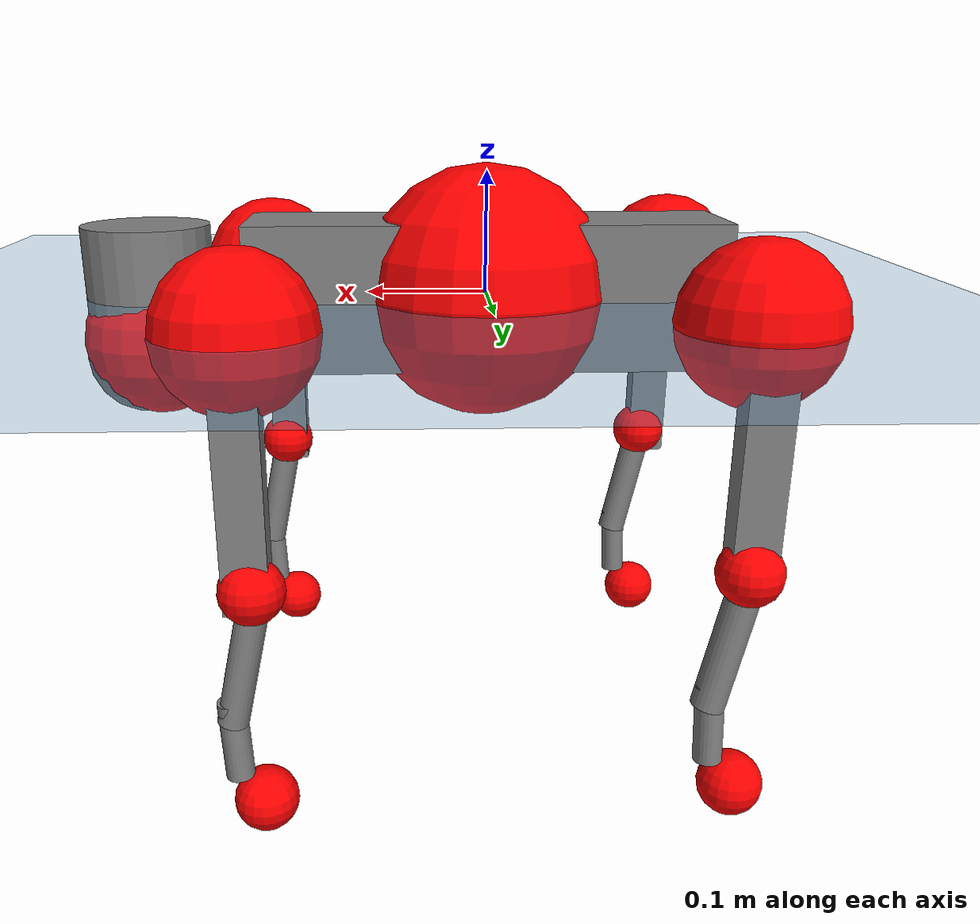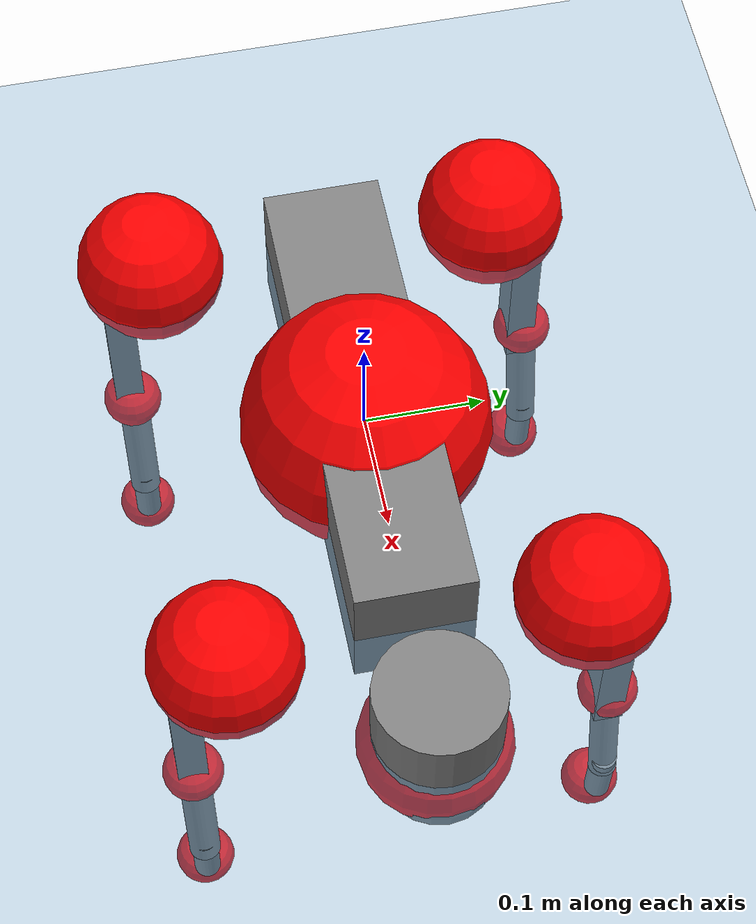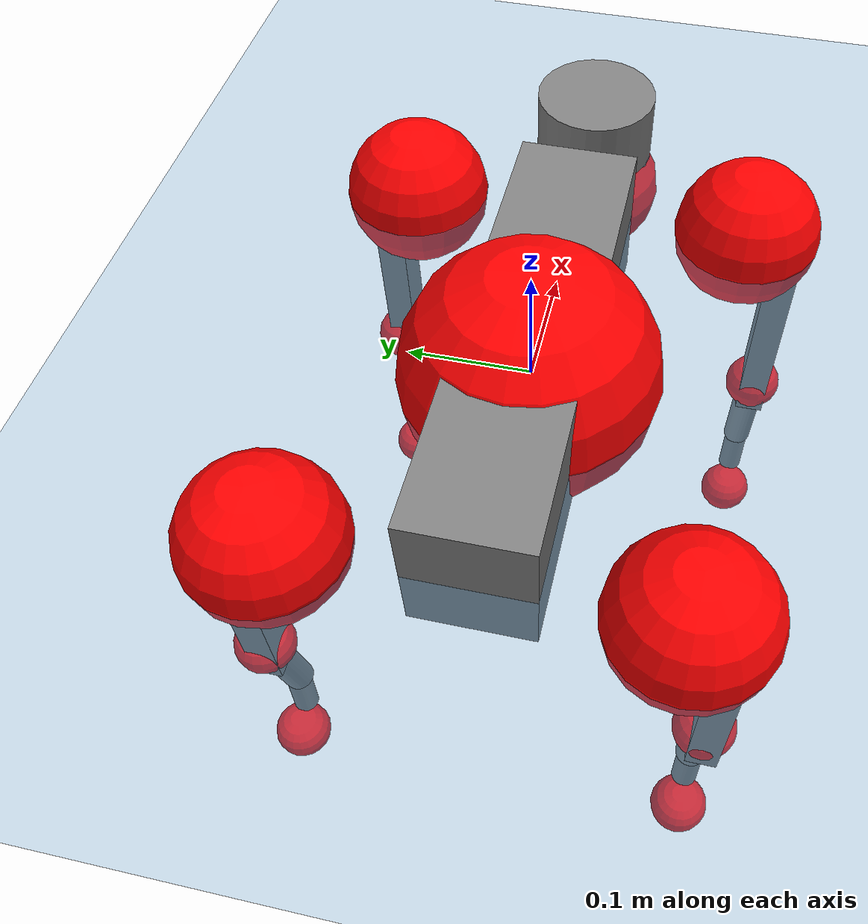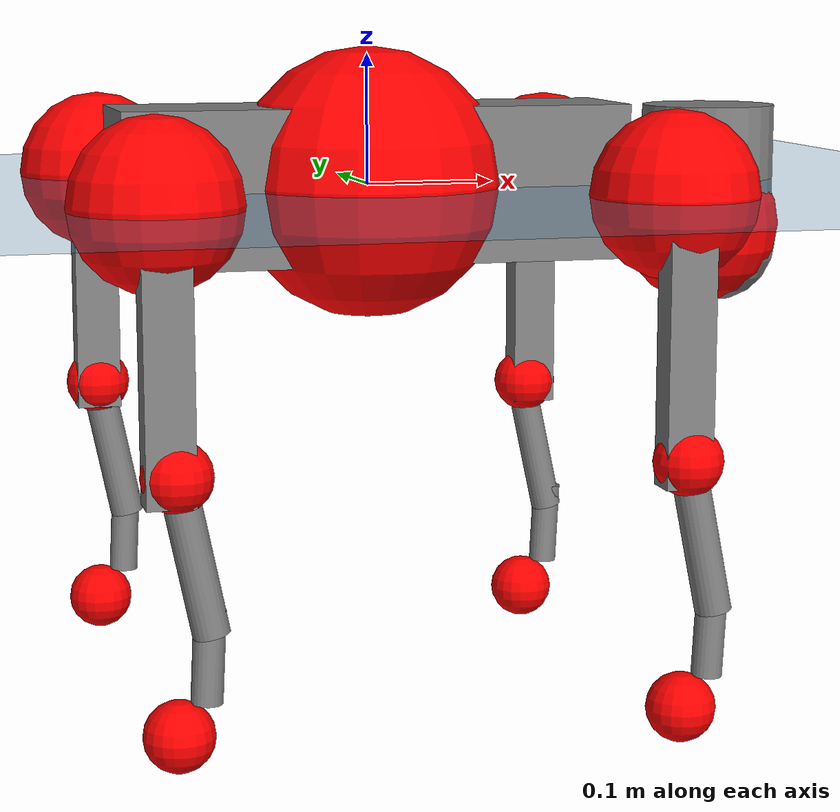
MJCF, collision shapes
<mujoco model="go2">
  <compiler angle="radian" assetdir="assets" balanceinertia="true" inertiafromgeom="false"/>

  <option timestep="0.005" density="1.2" viscosity="2e-05"/>

  <size nkey="1"/>

  <visual>
    <quality shadowsize="8192"/>
    <map shadowclip="0.5"/>
  </visual>

  <default>
    <default class="/">
      <geom contype="0" conaffinity="0" group="1" solref="-1000 -80"/>
      <site size="0.01 0.005 0.005" group="5"/>
      <general forcelimited="true" biastype="affine" gainprm="20" biasprm="0 -20 -0.5"/>
      <default class="go2">
        <joint armature="0.01" damping="0.01" frictionloss="0.2"/>
        <geom condim="1" margin="0.001"/>
        <default class="visual">
          <geom type="mesh" group="2"/>
        </default>
        <default class="collision">
          <geom group="3"/>
          <default class="foot">
            <geom size="0.022 0 0" condim="6" priority="1" friction="0.8 0.02 0.01" solimp="0.015 1 0.022"/>
          </default>
        </default>
        <default class="reward_collision_sphere">
          <geom group="5" rgba="1 0 0 1"/>
        </default>
      </default>
    </default>
  </default>

  <asset>
    <texture type="skybox" colorspace="auto" name="//unnamed_texture_0" builtin="gradient" rgb1="0.95 0.95 0.95" rgb2="0.95 0.95 0.95" width="100" height="600"/>
    <texture type="2d" colorspace="auto" name="texplane" builtin="checker" rgb1="0.345 0.575 0.748" rgb2="0.345 0.575 0.748" markrgb="1 1 1" width="512" height="512"/>
    <material name="MatPlane" class="/" texture="texplane" texuniform="true" texrepeat="2 2" specular="0.9"/>
    <material name="metal" class="/" rgba="0.9 0.95 0.95 1"/>
    <material name="black" class="/" rgba="0 0 0 1"/>
    <material name="white" class="/"/>
    <material name="gray" class="/" rgba="0.671705 0.692426 0.77427 1"/>
    <mesh name="base_0" class="/" file="base_0.obj"/>
    <mesh name="base_1" class="/" file="base_1.obj"/>
    <mesh name="base_2" class="/" file="base_2.obj"/>
    <mesh name="base_3" class="/" file="base_3.obj"/>
    <mesh name="base_4" class="/" file="base_4.obj"/>
    <mesh name="hip_0" class="/" file="hip_0.obj"/>
    <mesh name="hip_1" class="/" file="hip_1.obj"/>
    <mesh name="thigh_0" class="/" file="thigh_0.obj"/>
    <mesh name="thigh_1" class="/" file="thigh_1.obj"/>
    <mesh name="thigh_mirror_0" class="/" file="thigh_mirror_0.obj"/>
    <mesh name="thigh_mirror_1" class="/" file="thigh_mirror_1.obj"/>
    <mesh name="calf_0" class="/" file="calf_0.obj"/>
    <mesh name="calf_1" class="/" file="calf_1.obj"/>
    <mesh name="calf_mirror_0" class="/" file="calf_mirror_0.obj"/>
    <mesh name="calf_mirror_1" class="/" file="calf_mirror_1.obj"/>
    <mesh name="foot" class="/" file="foot.obj"/>
  </asset>

  <worldbody>
    <geom name="floor" class="/" size="100 100 0.125" type="plane" group="0" material="MatPlane"/>
    <light name="toplight_shadow" class="/" pos="0 0 5" dir="0.0990148 0.0990148 -0.990148" type="directional" ambient="0.04 0.04 0.04" diffuse="0.55 0.55 0.55" specular="0.12 0.12 0.12"/>
    <light name="toplight_fill" class="/" pos="0 0 5" dir="0.0990148 0.0990148 -0.990148" type="directional" castshadow="false" ambient="0.04 0.04 0.04" diffuse="0.3 0.3 0.3" specular="0.08 0.08 0.08"/>
    <body name="trunk" childclass="go2" pos="0.00077518 0.00133507 0.00133114" quat="1 3.50326e-05 7.74919e-05 6.56631e-05">
      <inertial pos="0.0230087 0.00184197 -0.00451175" quat="-0.0272764 0.708705 -0.00306771 0.704971" mass="8.16273" diaginertia="0.0994789 0.339122 0.0130178"/>
      <joint name="//unnamed_joint_0" type="free" armature="0" damping="0" frictionloss="0"/>
      <geom name="//unnamed_geom_1" class="visual" material="black" mesh="base_0"/>
      <geom name="//unnamed_geom_2" class="visual" material="black" mesh="base_1"/>
      <geom name="//unnamed_geom_3" class="visual" material="black" mesh="base_2"/>
      <geom name="//unnamed_geom_4" class="visual" material="white" mesh="base_3"/>
      <geom name="//unnamed_geom_5" class="visual" material="gray" mesh="base_4"/>
      <geom name="trunk_1" class="collision" size="0.197939 0.0491953 0.0599814" type="box"/>
      <geom name="trunk_2" class="collision" size="0.0526153 0.0473538" pos="0.281894 0 0.0088088" type="cylinder"/>
      <geom name="trunk_3" class="collision" size="0.0494584" pos="0.289807 0 -0.0528528"/>
      <geom name="//unnamed_geom_9" class="reward_collision_sphere" size="0.105231"/>
      <geom name="//unnamed_geom_10" class="reward_collision_sphere" size="0.0631384" pos="0.276949 0 -0.0396396"/>
      <site name="imu" pos="-0.0305723 0.00382375 0.0438866" size="0.0105231"/>
      <camera name="track" pos="0 -2.57387 0" quat="0.707107 0.707107 0 0" mode="trackcom"/>
      <camera name="ego_camera" pos="0.3086 0 0.0396396" quat="-0.5 -0.5 0.5 0.5"/>
      <body name="FL_hip" pos="0.191076 0.0546216 -0.00346875" quat="1 -0.000713151 -0.000342766 0.000486524">
        <inertial pos="-0.00725227 0.00250797 0.000755105" quat="0.495299 0.498355 0.511986 0.494157" mass="0.805013" diaginertia="0.000838063 0.00219908 0.000250764"/>
        <joint name="FL_hip_joint" pos="0 0 0" axis="0.999995 -9.40898e-05 -0.00329665" range="-1.15619 1.07032" armature="0.0102451" damping="0.0167575" frictionloss="0.208513"/>
        <geom name="//unnamed_geom_11" class="visual" material="metal" mesh="hip_0"/>
        <geom name="//unnamed_geom_12" class="visual" material="gray" mesh="hip_1"/>
        <geom name="//unnamed_geom_13" class="collision" size="0.0484061 0.0210461" pos="0 0.102955 0" quat="0.707107 0.707107 0 0" type="cylinder"/>
        <geom name="//unnamed_geom_14" class="reward_collision_sphere" size="0.0631384" pos="0 0.0900854 0"/>
        <body name="FL_thigh" pos="-0.000694877 0.117783 -0.00174052" quat="1 0.000200939 -5.65038e-05 -0.000125478">
          <inertial pos="-0.00423155 -0.0282269 -0.0264651" quat="0.83559 0.0869207 -0.0251035 0.541853" mass="1.34452" diaginertia="0.00576812 0.0207719 0.000454446"/>
          <joint name="FL_thigh_joint" pos="0 0 0" axis="-0.00126127 0.999977 -0.00664785" range="-1.5419 3.41715" armature="0.00952885" damping="0.0211398" frictionloss="0.233074"/>
          <geom name="//unnamed_geom_15" class="visual" material="metal" mesh="thigh_0"/>
          <geom name="//unnamed_geom_16" class="visual" material="gray" mesh="thigh_1"/>
          <geom name="//unnamed_geom_17" class="collision" size="0.112071 0.0128907 0.0178892" pos="0 0 -0.0938137" quat="0.707107 0 0.707107 0" type="box"/>
          <body name="FL_calf" pos="-0.00356236 0.00354714 -0.189583" quat="1 -0.000375239 -0.000345577 0.000191151">
            <inertial pos="0.00620329 -0.000896463 -0.119701" quat="0.712983 -3.2292e-05 -0.00527811 0.701161" mass="0.271947" diaginertia="0.0014165 0.00485984 2.93863e-05"/>
            <joint name="FL_calf_joint" pos="0 0 0" axis="-0.0039597 0.999991 -0.00167403" range="-2.63265 -0.855085" armature="0.0104555" damping="0.0108123" frictionloss="0.210988"/>
            <geom name="//unnamed_geom_18" class="visual" material="gray" mesh="calf_0"/>
            <geom name="//unnamed_geom_19" class="visual" material="black" mesh="calf_1"/>
            <geom name="FL_calf0" class="collision" size="0.0126277 0.0631384" pos="0.00791282 0 -0.0528528" quat="0.994493 0 -0.104807 0" type="cylinder"/>
            <geom name="//unnamed_geom_21" class="collision" size="0.0115754 0.0341999" pos="0.0197821 0 -0.13037" quat="0.999688 0 0.0249974 0" type="cylinder"/>
            <geom name="//unnamed_geom_22" class="visual" pos="0 0 -0.187627" quat="1 0 0 0" material="black" mesh="foot"/>
            <geom name="FL_foot" class="foot" size="0.0196629" pos="-0.00197821 0 -0.187627"/>
            <geom name="//unnamed_geom_24" class="reward_collision_sphere" size="0.0263076"/>
            <geom name="//unnamed_geom_25" class="reward_collision_sphere" size="0.0263076" pos="-0.00197821 0 -0.187627"/>
            <site name="FL_foot" class="foot" pos="-0.00197821 0 -0.187627" size="0.0105231"/>
          </body>
        </body>
      </body>
      <body name="FR_hip" pos="0.195008 -0.0609766 -0.000556263" quat="1 -0.00027123 -0.000153482 0.000128624">
        <inertial pos="-0.00733058 -0.000164438 0.00216782" quat="0.499393 0.507536 0.49684 0.496149" mass="0.828869" diaginertia="0.000823948 0.00228207 0.0002532"/>
        <joint name="FR_hip_joint" pos="0 0 0" axis="1 -3.67782e-05 0.000330445" range="-1.04835 1.03623" armature="0.01178" damping="0.0167035" frictionloss="0.234318"/>
        <geom name="//unnamed_geom_26" class="visual" pos="0 3.53738e-09 1.51726e-07" quat="4.63268e-05 1 0 0" material="metal" mesh="hip_0"/>
        <geom name="//unnamed_geom_27" class="visual" pos="0 5.73452e-09 -3.75275e-07" quat="4.63268e-05 1 0 0" material="gray" mesh="hip_1"/>
        <geom name="//unnamed_geom_28" class="collision" size="0.0484061 0.0210461" pos="0 -0.102955 0" quat="0.707107 0.707107 0 0" type="cylinder"/>
        <geom name="//unnamed_geom_29" class="reward_collision_sphere" size="0.0631384" pos="0 -0.0900854 0"/>
        <body name="FR_thigh" pos="-0.00385717 -0.127995 -0.00514392" quat="1 0.000572964 -0.00038231 0.000248577">
          <inertial pos="-0.00543741 0.0335901 -0.0294485" quat="0.550671 -0.0220777 0.0846588 0.830125" mass="1.29854" diaginertia="0.00556766 0.0201901 0.000442472"/>
          <joint name="FR_thigh_joint" pos="0 0 0" axis="0.000962209 -0.999966 0.00816531" range="-3.41246 1.56898" armature="0.0113308" damping="0.0236265" frictionloss="0.208098"/>
          <geom name="//unnamed_geom_30" class="visual" material="metal" mesh="thigh_mirror_0"/>
          <geom name="//unnamed_geom_31" class="visual" material="gray" mesh="thigh_mirror_1"/>
          <geom name="//unnamed_geom_32" class="collision" size="0.112071 0.0128907 0.0178892" pos="0 0 -0.0938137" quat="0.707107 0 0.707107 0" type="box"/>
          <body name="FR_calf" pos="0.00361258 0.000750765 -0.187568" quat="0.999999 0.000448894 -0.000136902 -0.00116951">
            <inertial pos="0.00833173 0.00111687 -0.12496" quat="0.702408 -0.00403223 0.000934573 0.711762" mass="0.285803" diaginertia="0.00145507 0.00513882 2.90332e-05"/>
            <joint name="FR_calf_joint" pos="0 0 0" axis="-0.0220671 -0.999734 0.00675201" stiffness="0.00211123" range="0.882043 2.72205" armature="0.00873141" damping="0" frictionloss="0.235426"/>
            <geom name="//unnamed_geom_33" class="visual" material="gray" mesh="calf_mirror_0"/>
            <geom name="//unnamed_geom_34" class="visual" material="black" mesh="calf_mirror_1"/>
            <geom name="FR_calf0" class="collision" size="0.01368 0.0631384" pos="0.00989103 0 -0.0528528" quat="0.995004 0 -0.0998334 0" type="cylinder"/>
            <geom name="//unnamed_geom_36" class="collision" size="0.0115754 0.0341999" pos="0.0197821 0 -0.13037" quat="0.999688 0 0.0249974 0" type="cylinder"/>
            <geom name="//unnamed_geom_37" class="visual" pos="0 0 -0.187627" quat="1 0 0 0" material="black" mesh="foot"/>
            <geom name="FR_foot" class="foot" size="0.0212349" pos="-0.00197821 0 -0.187627"/>
            <geom name="//unnamed_geom_39" class="reward_collision_sphere" size="0.0263076"/>
            <geom name="//unnamed_geom_40" class="reward_collision_sphere" size="0.0263076" pos="-0.00197821 0 -0.187627"/>
            <site name="FR_foot" class="foot" pos="-0.00197821 0 -0.187627" size="0.0105231"/>
          </body>
        </body>
      </body>
      <body name="RL_hip" pos="-0.189995 0.0579418 0.00148313" quat="1 0.00024985 0.000214306 0.00087049">
        <inertial pos="0.00465425 0.004461 0.00069278" quat="0.497746 0.501262 0.505379 0.495557" mass="0.833318" diaginertia="0.000851225 0.00215524 0.000263214"/>
        <joint name="RL_hip_joint" pos="0 0 0" axis="-0.999981 -0.00191254 0.00583341" range="-0.997135 1.00903" armature="0.0104061" damping="0.00640167" frictionloss="0.236074"/>
        <geom name="//unnamed_geom_41" class="visual" pos="-9.4279e-10 0 -1.84809e-07" quat="4.63268e-05 0 1 0" material="metal" mesh="hip_0"/>
        <geom name="//unnamed_geom_42" class="visual" pos="-1.52838e-09 0 -1.63899e-07" quat="4.63268e-05 0 1 0" material="gray" mesh="hip_1"/>
        <geom name="//unnamed_geom_43" class="collision" size="0.0484061 0.0210461" pos="0 0.102955 0" quat="0.707107 0.707107 0 0" type="cylinder"/>
        <geom name="//unnamed_geom_44" class="reward_collision_sphere" size="0.0631384" pos="0 0.0900854 0"/>
        <body name="RL_thigh" pos="5.43314e-05 0.123233 0.00429037" quat="0.999999 0.000357101 0.000495003 -0.00113259">
          <inertial pos="-0.00402896 -0.0299875 -0.0249631" quat="0.828793 0.0844561 -0.0230415 0.552664" mass="1.28773" diaginertia="0.0056017 0.0216682 0.000470541"/>
          <joint name="RL_thigh_joint" pos="0 0 0" axis="-0.0128208 0.999747 0.0184728" range="-0.49798 4.54539" armature="0.00952812" damping="0.0168033" frictionloss="0.196423"/>
          <geom name="//unnamed_geom_45" class="visual" material="metal" mesh="thigh_0"/>
          <geom name="//unnamed_geom_46" class="visual" material="gray" mesh="thigh_1"/>
          <geom name="//unnamed_geom_47" class="collision" size="0.112071 0.0128907 0.0178892" pos="0 0 -0.0938137" quat="0.707107 0 0.707107 0" type="box"/>
          <body name="RL_calf" pos="0.00105112 0.00507827 -0.18639" quat="0.999999 -0.000361681 -0.00100774 -0.000419385">
            <inertial pos="0.0048686 -0.0015578 -0.126594" quat="0.712261 0.00152526 -0.00294412 0.701906" mass="0.284144" diaginertia="0.00137241 0.00515811 2.83602e-05"/>
            <joint name="RL_calf_joint" pos="0 0 0" axis="-0.00394448 0.999992 0.000131137" range="-2.81737 -0.814029" armature="0.0103421" damping="0.00644094" frictionloss="0.21725"/>
            <geom name="//unnamed_geom_48" class="visual" material="gray" mesh="calf_0"/>
            <geom name="//unnamed_geom_49" class="visual" material="black" mesh="calf_1"/>
            <geom name="RL_calf0" class="collision" size="0.01368 0.0631384" pos="0.00989103 0 -0.0528528" quat="0.995004 0 -0.0998334 0" type="cylinder"/>
            <geom name="//unnamed_geom_51" class="collision" size="0.0115754 0.0341999" pos="0.0197821 0 -0.13037" quat="0.999688 0 0.0249974 0" type="cylinder"/>
            <geom name="//unnamed_geom_52" class="visual" pos="0 0 -0.187627" quat="1 0 0 0" material="black" mesh="foot"/>
            <geom name="RL_foot" class="foot" size="0.0231872" pos="-0.00197821 0 -0.187627"/>
            <geom name="//unnamed_geom_54" class="reward_collision_sphere" size="0.0263076"/>
            <geom name="//unnamed_geom_55" class="reward_collision_sphere" size="0.0263076" pos="-0.00197821 0 -0.187627"/>
            <site name="RL_foot" class="foot" pos="-0.00197821 0 -0.187627" size="0.0105231"/>
          </body>
        </body>
      </body>
      <body name="RR_hip" pos="-0.189512 -0.0611255 0.00160602" quat="0.999999 -0.00012531 -0.000778705 0.000956684">
        <inertial pos="0.00761361 -0.00473483 -0.000122251" quat="0.49211 0.503605 0.492731 0.511297" mass="0.800426" diaginertia="0.00083288 0.00217947 0.000245579"/>
        <joint name="RR_hip_joint" pos="0 0 0" axis="-0.999874 0.0138957 -0.007733" stiffness="0.00642926" range="-1.0852 1.11515" armature="0.0103185" damping="0.00620383" frictionloss="0.227094"/>
        <geom name="//unnamed_geom_56" class="visual" pos="9.53101e-10 3.53738e-09 -3.36534e-07" quat="2.14617e-09 4.63268e-05 4.63268e-05 -1" material="metal" mesh="hip_0"/>
        <geom name="//unnamed_geom_57" class="visual" pos="1.50287e-09 5.73452e-09 2.11376e-07" quat="2.14617e-09 4.63268e-05 4.63268e-05 -1" material="gray" mesh="hip_1"/>
        <geom name="//unnamed_geom_58" class="collision" size="0.0484061 0.0210461" pos="0 -0.102955 0" quat="0.707107 0.707107 0 0" type="cylinder"/>
        <geom name="//unnamed_geom_59" class="reward_collision_sphere" size="0.0631384" pos="0 -0.0900854 0"/>
        <body name="RR_thigh" pos="-0.000399567 -0.123779 -0.000474162" quat="0.999999 -9.28213e-05 -0.000560159 -0.00125751">
          <inertial pos="-0.00353311 0.0319398 -0.0283837" quat="0.547242 -0.00897646 0.0833394 0.832767" mass="1.34093" diaginertia="0.00568415 0.0204813 0.000462547"/>
          <joint name="RR_thigh_joint" pos="0 0 0" axis="0.00857827 -0.999724 -0.0218928" range="-4.49547 0.540879" armature="0.0102803" damping="0.0146119" frictionloss="0.235038"/>
          <geom name="//unnamed_geom_60" class="visual" material="metal" mesh="thigh_mirror_0"/>
          <geom name="//unnamed_geom_61" class="visual" material="gray" mesh="thigh_mirror_1"/>
          <geom name="//unnamed_geom_62" class="collision" size="0.112071 0.0128907 0.0178892" pos="0 0 -0.0938137" quat="0.707107 0 0.707107 0" type="box"/>
          <body name="RR_calf" pos="0.00616881 0.00204873 -0.185993" quat="1 -0.000355023 -6.20494e-05 0.00061964">
            <inertial pos="0.000678904 0.000828037 -0.127194" quat="0.702076 -0.0114514 0.00910528 0.711952" mass="0.275911" diaginertia="0.00133997 0.00496332 2.87892e-05"/>
            <joint name="RR_calf_joint" pos="0 0 0" axis="0.0225467 -0.999735 -0.0046862" range="0.876141 2.65164" armature="0.0122862" damping="0.00110463" frictionloss="0.20208"/>
            <geom name="//unnamed_geom_63" class="visual" material="gray" mesh="calf_mirror_0"/>
            <geom name="//unnamed_geom_64" class="visual" material="black" mesh="calf_mirror_1"/>
            <geom name="RR_calf0" class="collision" size="0.01368 0.0631384" pos="0.00989103 0 -0.0528528" quat="0.995004 0 -0.0998334 0" type="cylinder"/>
            <geom name="//unnamed_geom_66" class="collision" size="0.0115754 0.0341999" pos="0.0197821 0 -0.13037" quat="0.999688 0 0.0249974 0" type="cylinder"/>
            <geom name="//unnamed_geom_67" class="visual" pos="0 0 -0.187627" quat="1 0 0 0" material="black" mesh="foot"/>
            <geom name="RR_foot" class="foot" size="0.02293" pos="-0.00197821 0 -0.187627"/>
            <geom name="//unnamed_geom_69" class="reward_collision_sphere" size="0.0263076"/>
            <geom name="//unnamed_geom_70" class="reward_collision_sphere" size="0.0263076" pos="-0.00197821 0 -0.187627"/>
            <site name="RR_foot" class="foot" pos="-0.00197821 0 -0.187627" size="0.0105231"/>
          </body>
        </body>
      </body>
    </body>
  </worldbody>

  <contact>
    <pair class="/" geom1="floor" geom2="FL_foot" name="//unnamed_contact_0"/>
    <pair class="/" geom1="floor" geom2="FR_foot" name="//unnamed_contact_1"/>
    <pair class="/" geom1="floor" geom2="RL_foot" name="//unnamed_contact_2"/>
    <pair class="/" geom1="floor" geom2="RR_foot" name="//unnamed_contact_3"/>
  </contact>

  <actuator>
    <general name="FL_hip" class="/" joint="FL_hip_joint" forcerange="-20.0358 20.0358" gainprm="19.1165" biasprm="0 -19.1165 -0.557292"/>
    <general name="FL_thigh" class="/" joint="FL_thigh_joint" forcerange="-25.0545 25.0545" gainprm="19.1165" biasprm="0 -19.1165 -0.557292"/>
    <general name="FL_calf" class="/" joint="FL_calf_joint" forcerange="-43.3136 43.3136" gainprm="19.1165" biasprm="0 -19.1165 -0.557292"/>
    <general name="FR_hip" class="/" joint="FR_hip_joint" forcerange="-21.4085 21.4085" gainprm="19.1165" biasprm="0 -19.1165 -0.557292"/>
    <general name="FR_thigh" class="/" joint="FR_thigh_joint" forcerange="-21.3719 21.3719" gainprm="19.1165" biasprm="0 -19.1165 -0.557292"/>
    <general name="FR_calf" class="/" joint="FR_calf_joint" forcerange="-47.243 47.243" gainprm="19.1165" biasprm="0 -19.1165 -0.557292"/>
    <general name="RL_hip" class="/" joint="RL_hip_joint" forcerange="-22.5738 22.5738" gainprm="19.1165" biasprm="0 -19.1165 -0.557292"/>
    <general name="RL_thigh" class="/" joint="RL_thigh_joint" forcerange="-26.9915 26.9915" gainprm="19.1165" biasprm="0 -19.1165 -0.557292"/>
    <general name="RL_calf" class="/" joint="RL_calf_joint" forcerange="-46.5646 46.5646" gainprm="19.1165" biasprm="0 -19.1165 -0.557292"/>
    <general name="RR_hip" class="/" joint="RR_hip_joint" forcerange="-29.1426 29.1426" gainprm="19.1165" biasprm="0 -19.1165 -0.557292"/>
    <general name="RR_thigh" class="/" joint="RR_thigh_joint" forcerange="-23.1424 23.1424" gainprm="19.1165" biasprm="0 -19.1165 -0.557292"/>
    <general name="RR_calf" class="/" joint="RR_calf_joint" forcerange="-46.3055 46.3055" gainprm="19.1165" biasprm="0 -19.1165 -0.557292"/>
  </actuator>

  <sensor>
    <gyro site="imu" name="imu_angular_velocity"/>
    <velocimeter site="imu" name="imu_linear_velocity"/>
    <framelinvel objtype="site" objname="FL_foot" name="FL_foot_global_linear_velocity"/>
    <framelinvel objtype="site" objname="FR_foot" name="FR_foot_global_linear_velocity"/>
    <framelinvel objtype="site" objname="RL_foot" name="RL_foot_global_linear_velocity"/>
    <framelinvel objtype="site" objname="RR_foot" name="RR_foot_global_linear_velocity"/>
  </sensor>

  <keyframe>
    <key name="home" qpos="0 0 0.325 1 0 0 0 0.1 0.8 -1.5 -0.1 -0.8 1.5 -0.1 0.8 -1.5 0.1 -0.8 1.5"/>
  </keyframe>
</mujoco>
